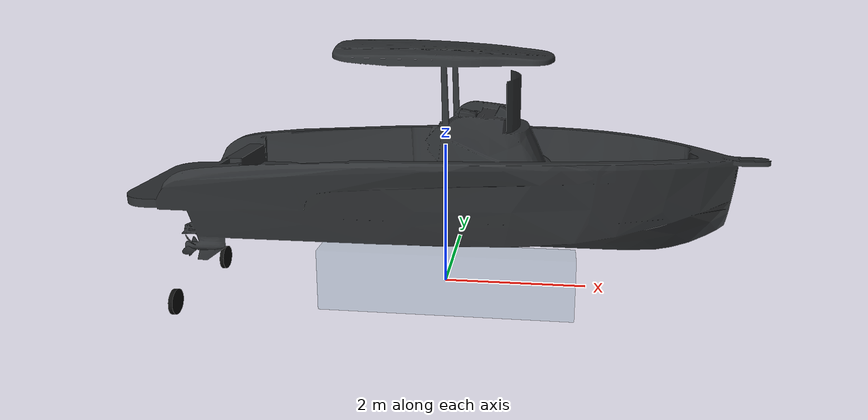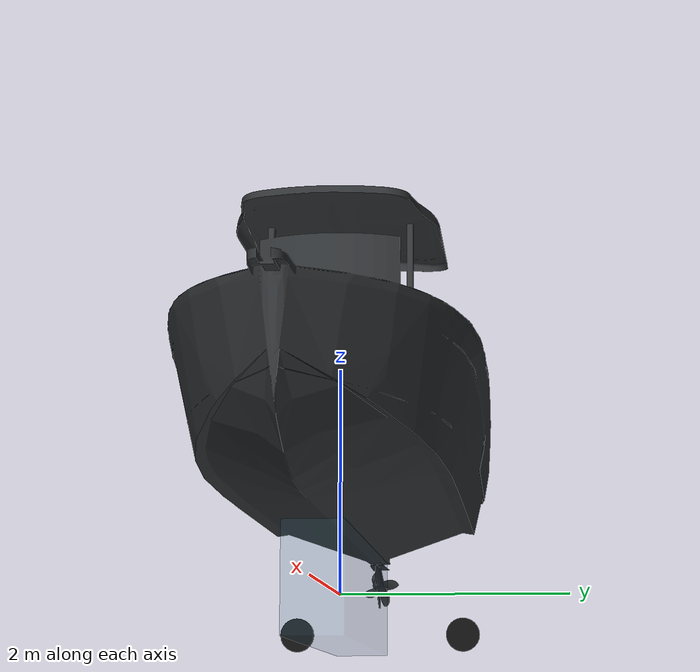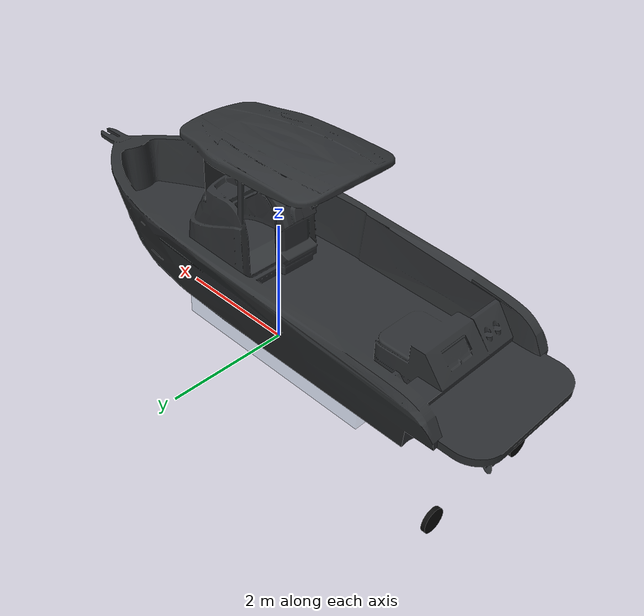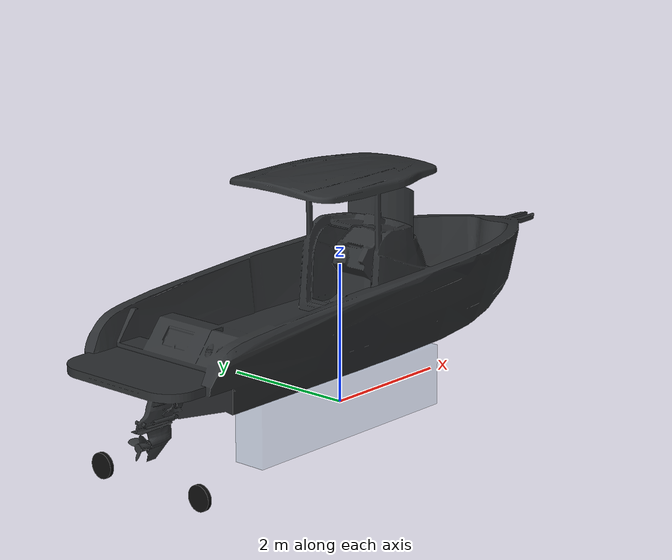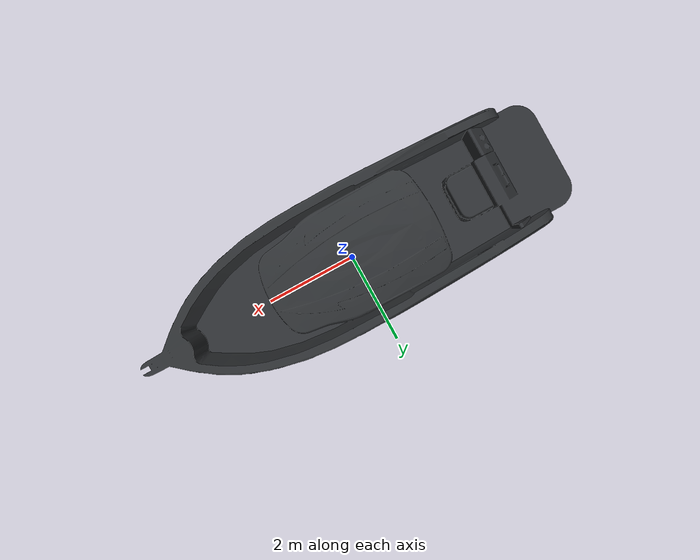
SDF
<?xml version="1.0" encoding="UTF-8"?>
<sdf version="1.9">
  <model name="boat">
    <pose>0 0 0 0 0 0</pose>

    <link name="base_link">
      <pose relative_to="__model__">0 0 0 0 0 0</pose>
      <inertial>
        <pose>0 0 -0.30 0 0 0</pose>
        <mass>850.0</mass>
        <inertia>
          <ixx>1100.0</ixx>
          <ixy>0</ixy>
          <ixz>0</ixz>
          <iyy>5200.0</iyy>
          <iyz>0</iyz>
          <izz>4200.0</izz>
        </inertia>
      </inertial>

      <collision name="rectangular_hull_collision">
        <pose>0 0 0 0 0 0</pose>
        <geometry>
          <box>
            <size>3.7 0.50 0.90</size>
          </box>
        </geometry>
      </collision>

      <visual name="aura_hull_visual">
        <pose>0 0 1.78 0 0 3.141592653589793</pose>
        <geometry>
          <mesh>
            <uri>model://boat/meshes/Aura_low.obj</uri>
            <scale>1 1 1</scale>
          </mesh>
        </geometry>
        <material>
          <ambient>0.18 0.19 0.20 1</ambient>
          <diffuse>0.18 0.19 0.20 1</diffuse>
          <specular>0.08 0.08 0.08 1</specular>
        </material>
      </visual>

      <visual name="rectangular_hull_reference_visual">
        <pose>0 0 0 0 0 0</pose>
        <geometry>
          <box>
            <size>3.7 0.50 0.90</size>
          </box>
        </geometry>
        <transparency>0.82</transparency>
        <material>
          <ambient>0.18 0.38 0.48 0.25</ambient>
          <diffuse>0.18 0.38 0.48 0.25</diffuse>
        </material>
      </visual>

      <velocity_decay>
        <linear>0.08</linear>
        <angular>0.85</angular>
      </velocity_decay>

      <sensor name="air_pressure_sensor" type="air_pressure">
        <gz_frame_id>base_link</gz_frame_id>
        <always_on>1</always_on>
        <update_rate>50</update_rate>
        <air_pressure>
          <pressure>
            <noise type="gaussian">
              <mean>0</mean>
              <stddev>3</stddev>
            </noise>
          </pressure>
        </air_pressure>
      </sensor>

      <sensor name="magnetometer_sensor" type="magnetometer">
        <gz_frame_id>base_link</gz_frame_id>
        <always_on>1</always_on>
        <update_rate>100</update_rate>
        <magnetometer>
          <x><noise type="gaussian"><stddev>0.0001</stddev></noise></x>
          <y><noise type="gaussian"><stddev>0.0001</stddev></noise></y>
          <z><noise type="gaussian"><stddev>0.0001</stddev></noise></z>
        </magnetometer>
      </sensor>

      <sensor name="imu_sensor" type="imu">
        <pose>0 0 0.4 0 0 0</pose>
        <gz_frame_id>base_link</gz_frame_id>
        <always_on>1</always_on>
        <update_rate>250</update_rate>
        <imu>
          <angular_velocity>
            <x><noise type="gaussian"><mean>0</mean><stddev>0.0008726646</stddev></noise></x>
            <y><noise type="gaussian"><mean>0</mean><stddev>0.0008726646</stddev></noise></y>
            <z><noise type="gaussian"><mean>0</mean><stddev>0.0008726646</stddev></noise></z>
          </angular_velocity>
          <linear_acceleration>
            <x><noise type="gaussian"><mean>0</mean><stddev>0.00637</stddev></noise></x>
            <y><noise type="gaussian"><mean>0</mean><stddev>0.00637</stddev></noise></y>
            <z><noise type="gaussian"><mean>0</mean><stddev>0.00686</stddev></noise></z>
          </linear_acceleration>
        </imu>
      </sensor>

      <sensor name="navsat_sensor" type="navsat">
        <pose>0 0 1.2 0 0 0</pose>
        <gz_frame_id>base_link</gz_frame_id>
        <always_on>1</always_on>
        <update_rate>30</update_rate>
      </sensor>
    </link>

    <link name="right_propeller_link">
      <pose relative_to="base_link">-3.7 -0.9 -0.15 0 1.570796 0</pose>
      <inertial>
        <mass>0.5</mass>
        <inertia>
          <ixx>0.005</ixx>
          <ixy>0</ixy>
          <ixz>0</ixz>
          <iyy>0.005</iyy>
          <iyz>0</iyz>
          <izz>0.003</izz>
        </inertia>
      </inertial>
      <visual name="right_propeller_visual">
        <geometry>
          <cylinder>
            <radius>0.18</radius>
            <length>0.06</length>
          </cylinder>
        </geometry>
        <material>
          <ambient>0.05 0.05 0.05 1</ambient>
          <diffuse>0.05 0.05 0.05 1</diffuse>
        </material>
      </visual>
    </link>

    <link name="left_propeller_link">
      <pose relative_to="base_link">-3.7 0.9 -0.15 0 1.570796 0</pose>
      <inertial>
        <mass>0.5</mass>
        <inertia>
          <ixx>0.005</ixx>
          <ixy>0</ixy>
          <ixz>0</ixz>
          <iyy>0.005</iyy>
          <iyz>0</iyz>
          <izz>0.003</izz>
        </inertia>
      </inertial>
      <visual name="left_propeller_visual">
        <geometry>
          <cylinder>
            <radius>0.18</radius>
            <length>0.06</length>
          </cylinder>
        </geometry>
        <material>
          <ambient>0.05 0.05 0.05 1</ambient>
          <diffuse>0.05 0.05 0.05 1</diffuse>
        </material>
      </visual>
    </link>

    <joint name="right_propeller_joint" type="revolute">
      <parent>base_link</parent>
      <child>right_propeller_link</child>
      <pose relative_to="base_link">-3.7 -0.9 -0.15 0 1.570796 0</pose>
      <axis>
        <xyz>0 0 1</xyz>
        <limit>
          <lower>-100000</lower>
          <upper>100000</upper>
          <effort>1000</effort>
          <velocity>200</velocity>
        </limit>
        <dynamics>
          <damping>0.02</damping>
          <friction>0.001</friction>
        </dynamics>
      </axis>
    </joint>

    <joint name="left_propeller_joint" type="revolute">
      <parent>base_link</parent>
      <child>left_propeller_link</child>
      <pose relative_to="base_link">-3.7 0.9 -0.15 0 1.570796 0</pose>
      <axis>
        <xyz>0 0 1</xyz>
        <limit>
          <lower>-100000</lower>
          <upper>100000</upper>
          <effort>1000</effort>
          <velocity>200</velocity>
        </limit>
        <dynamics>
          <damping>0.02</damping>
          <friction>0.001</friction>
        </dynamics>
      </axis>
    </joint>

    <plugin filename="libGenericMotorModelPlugin.so" name="gz::sim::systems::GenericMotorModel">
      <jointName>right_propeller_joint</jointName>
      <linkName>right_propeller_link</linkName>
      <actuator_number>0</actuator_number>
      <turningDirection>ccw</turningDirection>
      <timeConstantUp>0.5</timeConstantUp>
      <timeConstantDown>0.5</timeConstantDown>
      <maxRotVelocity>100.0</maxRotVelocity>
      <motorConstant>0.025</motorConstant>
      <momentConstant>0.0</momentConstant>
      <commandSubTopic>command/motor_speed</commandSubTopic>
      <rotorDragCoefficient>0.0</rotorDragCoefficient>
      <rollingMomentCoefficient>0.0</rollingMomentCoefficient>
      <rotorVelocitySlowdownSim>1</rotorVelocitySlowdownSim>
      <motorType>force_polynomial</motorType>
      <controlMethod>rpm</controlMethod>
      <minCommand>0.5</minCommand>
      <bidirectionalMotor>1</bidirectionalMotor>
      <positiveThrustPolynomial>[0.0, 2.5, 0.0, 0.0, 0.0, 0.0]</positiveThrustPolynomial>
      <negativeThrustPolynomial>[0.0, 0.75, 0.0, 0.0, 0.0, 0.0]</negativeThrustPolynomial>
    </plugin>

    <plugin filename="libGenericMotorModelPlugin.so" name="gz::sim::systems::GenericMotorModel">
      <jointName>left_propeller_joint</jointName>
      <linkName>left_propeller_link</linkName>
      <actuator_number>0</actuator_number>
      <turningDirection>ccw</turningDirection>
      <timeConstantUp>0.5</timeConstantUp>
      <timeConstantDown>0.5</timeConstantDown>
      <maxRotVelocity>100.0</maxRotVelocity>
      <motorConstant>0.025</motorConstant>
      <momentConstant>0.0</momentConstant>
      <commandSubTopic>command/motor_speed</commandSubTopic>
      <rotorDragCoefficient>0.0</rotorDragCoefficient>
      <rollingMomentCoefficient>0.0</rollingMomentCoefficient>
      <rotorVelocitySlowdownSim>1</rotorVelocitySlowdownSim>
      <motorType>force_polynomial</motorType>
      <controlMethod>rpm</controlMethod>
      <minCommand>0.5</minCommand>
      <bidirectionalMotor>1</bidirectionalMotor>
      <positiveThrustPolynomial>[0.0, 2.5, 0.0, 0.0, 0.0, 0.0]</positiveThrustPolynomial>
      <negativeThrustPolynomial>[0.0, 0.75, 0.0, 0.0, 0.0, 0.0]</negativeThrustPolynomial>
    </plugin>

    <plugin filename="gz-sim-joint-state-publisher-system" name="gz::sim::systems::JointStatePublisher">
      <joint_name>right_propeller_joint</joint_name>
      <joint_name>left_propeller_joint</joint_name>
    </plugin>
  </model>
</sdf>
